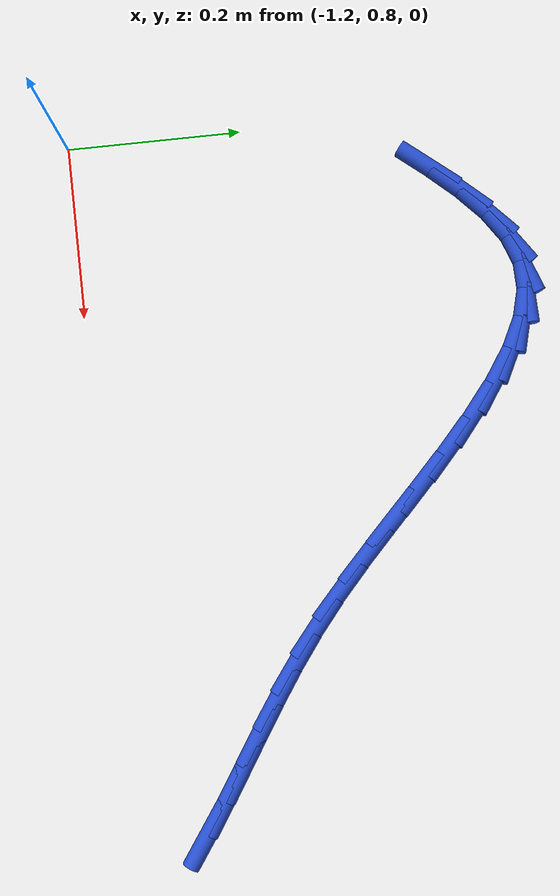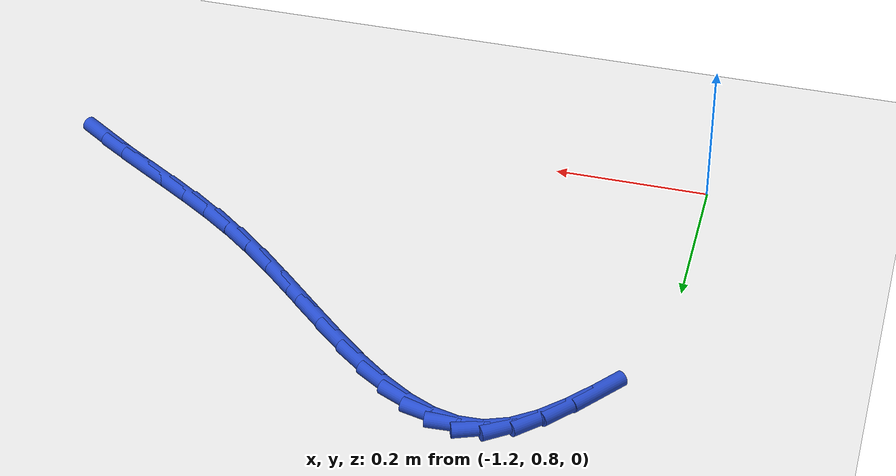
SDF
<sdf version="1.6">
 <world name="default">
  <model name="ground_plane">
   <static>1</static>
   <link name="link">
    <collision name="collision">
     <geometry><plane><normal>0 0 1</normal><size>100 100</size></plane></geometry>
     <surface><friction><ode><mu>100</mu><mu2>50</mu2></ode></friction></surface>
    </collision>
    <visual name="visual">
     <cast_shadows>0</cast_shadows>
     <geometry><plane><normal>0 0 1</normal><size>100 100</size></plane></geometry>
     <material>
      <script><uri>file://media/materials/scripts/gazebo.material</uri><name>Gazebo/WhiteGlow</name></script>
     </material>
    </visual>
   </link>
  </model>
  <model name="line">
   <link name="link_23">
    <pose>-0.4052553957224594 0.8835040523797999 0.01 0 1.57 -0.6058327614477008</pose>
    <collision name="collision">
     <geometry><cylinder><radius>0.01</radius><length>0.08</length></cylinder></geometry>
    </collision>
    <visual name="visual">
     <material>
      <script><name>Gazebo/Blue</name><uri>file://media/materials/scripts/gazebo.material</uri></script>
     </material>
     <geometry><cylinder><radius>0.01</radius><length>0.08</length></cylinder></geometry>
    </visual>
   </link>
   <link name="link_24">
    <pose>-0.43900772376808944 0.9068854361643817 0.01 0 1.57 -0.575027508403918</pose>
    <collision name="collision">
     <geometry><cylinder><radius>0.01</radius><length>0.08</length></cylinder></geometry>
    </collision>
    <visual name="visual">
     <material>
      <script><name>Gazebo/Blue</name><uri>file://media/materials/scripts/gazebo.material</uri></script>
     </material>
     <geometry><cylinder><radius>0.01</radius><length>0.08</length></cylinder></geometry>
    </visual>
   </link>
   <link name="link_25">
    <pose>-0.4738386575860525 0.9294588264500868 0.01 0 1.57 -0.5635403185666521</pose>
    <collision name="collision">
     <geometry><cylinder><radius>0.01</radius><length>0.08</length></cylinder></geometry>
    </collision>
    <visual name="visual">
     <material>
      <script><name>Gazebo/Blue</name><uri>file://media/materials/scripts/gazebo.material</uri></script>
     </material>
     <geometry><cylinder><radius>0.01</radius><length>0.08</length></cylinder></geometry>
    </visual>
   </link>
   <link name="link_26">
    <pose>-0.5095563062508094 0.9520285380221327 0.01 0 1.57 -0.5706051086391455</pose>
    <collision name="collision">
     <geometry><cylinder><radius>0.01</radius><length>0.08</length></cylinder></geometry>
    </collision>
    <visual name="visual">
     <material>
      <script><name>Gazebo/Blue</name><uri>file://media/materials/scripts/gazebo.material</uri></script>
     </material>
     <geometry><cylinder><radius>0.01</radius><length>0.08</length></cylinder></geometry>
    </visual>
   </link>
   <link name="link_27">
    <pose>-0.5459687788368206 0.9753988856657364 0.01 0 1.57 -0.5948170970099868</pose>
    <collision name="collision">
     <geometry><cylinder><radius>0.01</radius><length>0.08</length></cylinder></geometry>
    </collision>
    <visual name="visual">
     <material>
      <script><name>Gazebo/Blue</name><uri>file://media/materials/scripts/gazebo.material</uri></script>
     </material>
     <geometry><cylinder><radius>0.01</radius><length>0.08</length></cylinder></geometry>
    </visual>
   </link>
   <link name="link_28">
    <pose>-0.5828841844185473 1.0003741841661153 0.01 0 1.57 -0.6342349878830041</pose>
    <collision name="collision">
     <geometry><cylinder><radius>0.01</radius><length>0.08</length></cylinder></geometry>
    </collision>
    <visual name="visual">
     <material>
      <script><name>Gazebo/Blue</name><uri>file://media/materials/scripts/gazebo.material</uri></script>
     </material>
     <geometry><cylinder><radius>0.01</radius><length>0.08</length></cylinder></geometry>
    </visual>
   </link>
   <link name="link_29">
    <pose>-0.62011063207045 1.0277587483084871 0.01 0 1.57 -0.6860929498584207</pose>
    <collision name="collision">
     <geometry><cylinder><radius>0.01</radius><length>0.08</length></cylinder></geometry>
    </collision>
    <visual name="visual">
     <material>
      <script><name>Gazebo/Blue</name><uri>file://media/materials/scripts/gazebo.material</uri></script>
     </material>
     <geometry><cylinder><radius>0.01</radius><length>0.08</length></cylinder></geometry>
    </visual>
   </link>
   <link name="link_30">
    <pose>-0.6574569744867412 1.0583375126407861 0.01 0 1.57 -0.7342811216919091</pose>
    <collision name="collision">
     <geometry><cylinder><radius>0.01</radius><length>0.08</length></cylinder></geometry>
    </collision>
    <visual name="visual">
     <material>
      <script><name>Gazebo/Blue</name><uri>file://media/materials/scripts/gazebo.material</uri></script>
     </material>
     <geometry><cylinder><radius>0.01</radius><length>0.08</length></cylinder></geometry>
    </visual>
   </link>
   <link name="link_31">
    <pose>-0.6947658596090776 1.0920146390941072 0.01 0 1.57 -0.7619201479088347</pose>
    <collision name="collision">
     <geometry><cylinder><radius>0.01</radius><length>0.08</length></cylinder></geometry>
    </collision>
    <visual name="visual">
     <material>
      <script><name>Gazebo/Blue</name><uri>file://media/materials/scripts/gazebo.material</uri></script>
     </material>
     <geometry><cylinder><radius>0.01</radius><length>0.08</length></cylinder></geometry>
    </visual>
   </link>
   <link name="link_32">
    <pose>-0.7319268937152781 1.1274704602226113 0.01 0 1.57 -0.7705261317645066</pose>
    <collision name="collision">
     <geometry><cylinder><radius>0.01</radius><length>0.08</length></cylinder></geometry>
    </collision>
    <visual name="visual">
     <material>
      <script><name>Gazebo/Blue</name><uri>file://media/materials/scripts/gazebo.material</uri></script>
     </material>
     <geometry><cylinder><radius>0.01</radius><length>0.08</length></cylinder></geometry>
    </visual>
   </link>
   <link name="link_33">
    <pose>-0.7688331489415055 1.163294981290243 0.01 0 1.57 -0.7607098235044691</pose>
    <collision name="collision">
     <geometry><cylinder><radius>0.01</radius><length>0.08</length></cylinder></geometry>
    </collision>
    <visual name="visual">
     <material>
      <script><name>Gazebo/Blue</name><uri>file://media/materials/scripts/gazebo.material</uri></script>
     </material>
     <geometry><cylinder><radius>0.01</radius><length>0.08</length></cylinder></geometry>
    </visual>
   </link>
   <link name="link_34">
    <pose>-0.8053776974239232 1.1980782075609473 0.01 0 1.57 -0.7307224854706224</pose>
    <collision name="collision">
     <geometry><cylinder><radius>0.01</radius><length>0.08</length></cylinder></geometry>
    </collision>
    <visual name="visual">
     <material>
      <script><name>Gazebo/Blue</name><uri>file://media/materials/scripts/gazebo.material</uri></script>
     </material>
     <geometry><cylinder><radius>0.01</radius><length>0.08</length></cylinder></geometry>
    </visual>
   </link>
   <link name="link_35">
    <pose>-0.8414536112986943 1.2304101442986695 0.01 0 1.57 -0.6759484763236466</pose>
    <collision name="collision">
     <geometry><cylinder><radius>0.01</radius><length>0.08</length></cylinder></geometry>
    </collision>
    <visual name="visual">
     <material>
      <script><name>Gazebo/Blue</name><uri>file://media/materials/scripts/gazebo.material</uri></script>
     </material>
     <geometry><cylinder><radius>0.01</radius><length>0.08</length></cylinder></geometry>
    </visual>
   </link>
   <link name="link_36">
    <pose>-0.8769539627019824 1.2588807967673548 0.01 0 1.57 -0.5877533416081191</pose>
    <collision name="collision">
     <geometry><cylinder><radius>0.01</radius><length>0.08</length></cylinder></geometry>
    </collision>
    <visual name="visual">
     <material>
      <script><name>Gazebo/Blue</name><uri>file://media/materials/scripts/gazebo.material</uri></script>
     </material>
     <geometry><cylinder><radius>0.01</radius><length>0.08</length></cylinder></geometry>
    </visual>
   </link>
   <link name="link_37">
    <pose>-0.9117718237699506 1.2820801702309477 0.01 0 1.57 -0.45191603260949115</pose>
    <collision name="collision">
     <geometry><cylinder><radius>0.01</radius><length>0.08</length></cylinder></geometry>
    </collision>
    <visual name="visual">
     <material>
      <script><name>Gazebo/Blue</name><uri>file://media/materials/scripts/gazebo.material</uri></script>
     </material>
     <geometry><cylinder><radius>0.01</radius><length>0.08</length></cylinder></geometry>
    </visual>
   </link>
   <link name="link_38">
    <pose>-0.9458002666387614 1.2985982699533933 0.01 0 1.57 -0.24905956902135706</pose>
    <collision name="collision">
     <geometry><cylinder><radius>0.01</radius><length>0.08</length></cylinder></geometry>
    </collision>
    <visual name="visual">
     <material>
      <script><name>Gazebo/Blue</name><uri>file://media/materials/scripts/gazebo.material</uri></script>
     </material>
     <geometry><cylinder><radius>0.01</radius><length>0.08</length></cylinder></geometry>
    </visual>
   </link>
   <link name="link_39">
    <pose>-0.978932363444579 1.3070251011986365 0.01 0 1.57 0.03342891580712591</pose>
    <collision name="collision">
     <geometry><cylinder><radius>0.01</radius><length>0.08</length></cylinder></geometry>
    </collision>
    <visual name="visual">
     <material>
      <script><name>Gazebo/Blue</name><uri>file://media/materials/scripts/gazebo.material</uri></script>
     </material>
     <geometry><cylinder><radius>0.01</radius><length>0.08</length></cylinder></geometry>
    </visual>
   </link>
   <link name="link_40">
    <pose>-1.0110611863235661 1.3059506692306226 0.01 0 1.57 0.3555052589625959</pose>
    <collision name="collision">
     <geometry><cylinder><radius>0.01</radius><length>0.08</length></cylinder></geometry>
    </collision>
    <visual name="visual">
     <material>
      <script><name>Gazebo/Blue</name><uri>file://media/materials/scripts/gazebo.material</uri></script>
     </material>
     <geometry><cylinder><radius>0.01</radius><length>0.08</length></cylinder></geometry>
    </visual>
   </link>
   <link name="link_41">
    <pose>-1.0421387808163007 1.294412182050188 0.01 0 1.57 0.6007287738151522</pose>
    <collision name="collision">
     <geometry><cylinder><radius>0.01</radius><length>0.08</length></cylinder></geometry>
    </collision>
    <visual name="visual">
     <material>
      <script><name>Gazebo/Blue</name><uri>file://media/materials/scripts/gazebo.material</uri></script>
     </material>
     <geometry><cylinder><radius>0.01</radius><length>0.08</length></cylinder></geometry>
    </visual>
   </link>
   <link name="link_42">
    <pose>-1.0724103483524634 1.2736698856062618 0.01 0 1.57 0.7541746495810016</pose>
    <collision name="collision">
     <geometry><cylinder><radius>0.01</radius><length>0.08</length></cylinder></geometry>
    </collision>
    <visual name="visual">
     <material>
      <script><name>Gazebo/Blue</name><uri>file://media/materials/scripts/gazebo.material</uri></script>
     </material>
     <geometry><cylinder><radius>0.01</radius><length>0.08</length></cylinder></geometry>
    </visual>
   </link>
   <link name="link_43">
    <pose>-1.1022120086891347 1.2456734709501964 0.01 0 1.57 0.8430254866480653</pose>
    <collision name="collision">
     <geometry><cylinder><radius>0.01</radius><length>0.08</length></cylinder></geometry>
    </collision>
    <visual name="visual">
     <material>
      <script><name>Gazebo/Blue</name><uri>file://media/materials/scripts/gazebo.material</uri></script>
     </material>
     <geometry><cylinder><radius>0.01</radius><length>0.08</length></cylinder></geometry>
    </visual>
   </link>
   <link name="link_44">
    <pose>-1.131879909403983 1.2123728401003533 0.01 0 1.57 0.8870329697762767</pose>
    <collision name="collision">
     <geometry><cylinder><radius>0.01</radius><length>0.08</length></cylinder></geometry>
    </collision>
    <visual name="visual">
     <material>
      <script><name>Gazebo/Blue</name><uri>file://media/materials/scripts/gazebo.material</uri></script>
     </material>
     <geometry><cylinder><radius>0.01</radius><length>0.08</length></cylinder></geometry>
    </visual>
   </link>
  </model>
 </world>
</sdf>
